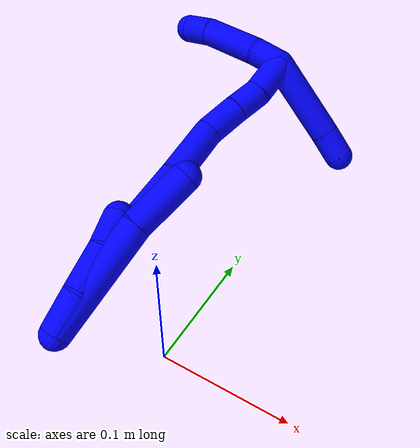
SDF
<sdf version="1.7">
 <world name="default">
  <plugin name="TubeGeneratorPlugin" filename="libtube_generator_plugin.so"/>
  <model name="photoneo_s_sensor">
   <static>1</static>
   <pose>0 0 2 1.57079 1.57079 3.14159</pose>
   <link name="link">
    <inertial><mass>0.1</mass></inertial>
    <sensor name="sensor" type="depth">
     <update_rate>30</update_rate>
     <camera>
      <horizontal_fov>1.22</horizontal_fov>
      <image><width>1920</width><height>1200</height><format>B8G8R8</format></image>
      <clip><near>0.1</near><far>4</far></clip>
      <depth_camera><output>points</output></depth_camera>
     </camera>
     <plugin name="camera_plugin" filename="libgazebo_ros_depth_camera.so">
      <baseline>0.2</baseline>
      <alwaysOn>1</alwaysOn>
      <updateRate>0.0</updateRate>
      <cameraName>camera_ir</cameraName>
      <imageTopicName>/camera/color/image_raw</imageTopicName>
      <cameraInfoTopicName>/camera/color/camera_info</cameraInfoTopicName>
      <depthImageTopicName>/camera/depth/image_raw</depthImageTopicName>
      <depthImageCameraInfoTopicName>/camera/depth/camera_info</depthImageCameraInfoTopicName>
      <pointCloudTopicName>/camera/depth/points</pointCloudTopicName>
      <frameName>fr_optical</frameName>
      <pointCloudCutoff>0.1</pointCloudCutoff>
      <pointCloudCutoffMax>2.0</pointCloudCutoffMax>
      <distortionK1>0</distortionK1>
      <distortionK2>0</distortionK2>
      <distortionK3>0</distortionK3>
      <distortionT1>0</distortionT1>
      <distortionT2>0</distortionT2>
      <CxPrime>0</CxPrime>
      <Cx>0</Cx>
      <Cy>0</Cy>
      <focalLength>0</focalLength>
      <hackBaseline>0</hackBaseline>
     </plugin>
    </sensor>
   </link>
  </model>
  <gravity>0 0 -9.8</gravity>
  <magnetic_field>6e-06 2.3e-05 -4.2e-05</magnetic_field>
  <atmosphere type="adiabatic"/>
  <physics name="default_physics" default="0" type="ode">
   <max_step_size>0.003</max_step_size>
   <real_time_factor>1</real_time_factor>
   <real_time_update_rate>1000</real_time_update_rate>
   <max_contacts>10000</max_contacts>
   <ode>
    <solver>
     <type>quick</type>
     <iters>100</iters>
     <sor>1.3</sor>
     <use_dynamic_moi_rescaling>0</use_dynamic_moi_rescaling>
    </solver>
    <constraints>
     <contact_max_correcting_vel>0</contact_max_correcting_vel>
     <contact_surface_layer>0.001</contact_surface_layer>
     <cfm>0</cfm>
     <erp>0.2</erp>
    </constraints>
   </ode>
  </physics>
  <scene><ambient>0.4 0.4 0.4 1</ambient><background>0.7 0.7 0.7 1</background><shadows>0</shadows></scene>
  <audio><device>default</device></audio>
  <spherical_coordinates>
   <surface_model>EARTH_WGS84</surface_model>
   <latitude_deg>0</latitude_deg>
   <longitude_deg>0</longitude_deg>
   <elevation>0</elevation>
   <heading_deg>0</heading_deg>
  </spherical_coordinates>
  <model name="bin">
   <static>1</static>
   <link name="bottom">
    <collision name="collision-bottom">
     <pose>0 0 -0.01 0 -0 0</pose>
     <geometry><box><size>0.8 0.6 0.02</size></box></geometry>
     <surface>
      <friction><ode><mu>100</mu><mu2>100</mu2></ode></friction>
      <contact><collide_bitmask>65535</collide_bitmask></contact>
     </surface>
    </collision>
   </link>
   <link name="west_wall">
    <collision name="collision-west_wall">
     <pose>-0.41 0 0.1 0 -0 0</pose>
     <geometry><box><size>0.02 0.6 0.2</size></box></geometry>
     <surface>
      <friction><ode><mu>100</mu><mu2>100</mu2></ode></friction>
      <contact><collide_bitmask>65535</collide_bitmask></contact>
     </surface>
    </collision>
   </link>
   <link name="east_wall">
    <collision name="collision-east_wall">
     <pose>0.41 0 0.1 0 -0 0</pose>
     <geometry><box><size>0.02 0.6 0.2</size></box></geometry>
     <surface>
      <friction><ode><mu>100</mu><mu2>100</mu2></ode></friction>
      <contact><collide_bitmask>65535</collide_bitmask></contact>
     </surface>
    </collision>
   </link>
   <link name="south_wall">
    <collision name="collision-south_wall">
     <pose>0 -0.31 0.1 0 -0 0</pose>
     <geometry><box><size>0.8 0.02 0.2</size></box></geometry>
     <surface>
      <friction><ode><mu>100</mu><mu2>100</mu2></ode></friction>
      <contact><collide_bitmask>65535</collide_bitmask></contact>
     </surface>
    </collision>
   </link>
   <link name="north_wall">
    <collision name="collision-north_wall">
     <pose>0 0.31 0.1 0 -0 0</pose>
     <geometry><box><size>0.8 0.02 0.2</size></box></geometry>
     <surface>
      <friction><ode><mu>100</mu><mu2>100</mu2></ode></friction>
      <contact><collide_bitmask>65535</collide_bitmask></contact>
     </surface>
    </collision>
   </link>
  </model>
  <model name="1">
   <static>0</static>
   <link name="1">
    <collision name="collision-cylinder-e_1_2_8">
     <pose>0.005578 0.005614 0.04824 -0.115863 0.114344 -0.006639</pose>
     <geometry><cylinder><radius>0.0125</radius><length>0.09777</length></cylinder></geometry>
     <surface>
      <friction><ode><mu>1.16</mu><mu2>1.16</mu2><slip1>0</slip1><slip2>0</slip2></ode></friction>
      <contact><ode><kp>1e+06</kp><kd>1</kd><max_vel>0</max_vel><min_depth>0.001</min_depth></ode></contact>
     </surface>
    </collision>
    <visual name="visual-cylinder-e_1_2_8">
     <pose>0.005578 0.005614 0.04824 -0.115863 0.114344 -0.006639</pose>
     <geometry><cylinder><radius>0.0125</radius><length>0.09777</length></cylinder></geometry>
     <material><ambient>0 0 1 1</ambient></material>
    </visual>
    <collision name="collision-cylinder-e_2_8_6">
     <pose>0.018161 0.014368 0.121441 -0.125126 0.271607 -0.01712</pose>
     <geometry><cylinder><radius>0.0125</radius><length>0.05223</length></cylinder></geometry>
     <surface>
      <friction><ode><mu>1.16</mu><mu2>1.16</mu2><slip1>0</slip1><slip2>0</slip2></ode></friction>
      <contact><ode><kp>1e+06</kp><kd>1</kd><max_vel>0</max_vel><min_depth>0.001</min_depth></ode></contact>
     </surface>
    </collision>
    <visual name="visual-cylinder-e_2_8_6">
     <pose>0.018161 0.014368 0.121441 -0.125126 0.271607 -0.01712</pose>
     <geometry><cylinder><radius>0.0125</radius><length>0.05223</length></cylinder></geometry>
     <material><ambient>0 0 1 1</ambient></material>
    </visual>
    <collision name="collision-cylinder-e_1_2_9">
     <pose>-0.000169 0.001246 0.016637 -0.074729 -0.010107 0.000378</pose>
     <geometry><cylinder><radius>0.0125</radius><length>0.033369</length></cylinder></geometry>
     <surface>
      <friction><ode><mu>1.16</mu><mu2>1.16</mu2><slip1>0</slip1><slip2>0</slip2></ode></friction>
      <contact><ode><kp>1e+06</kp><kd>1</kd><max_vel>0</max_vel><min_depth>0.001</min_depth></ode></contact>
     </surface>
    </collision>
    <visual name="visual-cylinder-e_1_2_9">
     <pose>-0.000169 0.001246 0.016637 -0.074729 -0.010107 0.000378</pose>
     <geometry><cylinder><radius>0.0125</radius><length>0.033369</length></cylinder></geometry>
     <material><ambient>0 0 1 1</ambient></material>
    </visual>
    <collision name="collision-cylinder-e_2_9_10">
     <pose>-0.00096 0.007733 0.051241 -0.283881 -0.03327 0.004755</pose>
     <geometry><cylinder><radius>0.0125</radius><length>0.037453</length></cylinder></geometry>
     <surface>
      <friction><ode><mu>1.16</mu><mu2>1.16</mu2><slip1>0</slip1><slip2>0</slip2></ode></friction>
      <contact><ode><kp>1e+06</kp><kd>1</kd><max_vel>0</max_vel><min_depth>0.001</min_depth></ode></contact>
     </surface>
    </collision>
    <visual name="visual-cylinder-e_2_9_10">
     <pose>-0.00096 0.007733 0.051241 -0.283881 -0.03327 0.004755</pose>
     <geometry><cylinder><radius>0.0125</radius><length>0.037453</length></cylinder></geometry>
     <material><ambient>0 0 1 1</ambient></material>
    </visual>
    <collision name="collision-cylinder-e_3_10_5">
     <pose>-0.003921 0.020086 0.08173 -0.516452 -0.160968 0.042601</pose>
     <geometry><cylinder><radius>0.0125</radius><length>0.029179</length></cylinder></geometry>
     <surface>
      <friction><ode><mu>1.16</mu><mu2>1.16</mu2><slip1>0</slip1><slip2>0</slip2></ode></friction>
      <contact><ode><kp>1e+06</kp><kd>1</kd><max_vel>0</max_vel><min_depth>0.001</min_depth></ode></contact>
     </surface>
    </collision>
    <visual name="visual-cylinder-e_3_10_5">
     <pose>-0.003921 0.020086 0.08173 -0.516452 -0.160968 0.042601</pose>
     <geometry><cylinder><radius>0.0125</radius><length>0.029179</length></cylinder></geometry>
     <material><ambient>0 0 1 1</ambient></material>
    </visual>
    <collision name="collision-cylinder-e_1_2_11">
     <pose>-0.000349 0.005582 0.010589 -0.485119 -0.029137 0.00721</pose>
     <geometry><cylinder><radius>0.0125</radius><length>0.023951</length></cylinder></geometry>
     <surface>
      <friction><ode><mu>1.16</mu><mu2>1.16</mu2><slip1>0</slip1><slip2>0</slip2></ode></friction>
      <contact><ode><kp>1e+06</kp><kd>1</kd><max_vel>0</max_vel><min_depth>0.001</min_depth></ode></contact>
     </surface>
    </collision>
    <visual name="visual-cylinder-e_1_2_11">
     <pose>-0.000349 0.005582 0.010589 -0.485119 -0.029137 0.00721</pose>
     <geometry><cylinder><radius>0.0125</radius><length>0.023951</length></cylinder></geometry>
     <material><ambient>0 0 1 1</ambient></material>
    </visual>
    <collision name="collision-cylinder-e_2_11_12">
     <pose>-0.001234 0.01893 0.036419 -0.471256 -0.031313 0.007518</pose>
     <geometry><cylinder><radius>0.0125</radius><length>0.034227</length></cylinder></geometry>
     <surface>
      <friction><ode><mu>1.16</mu><mu2>1.16</mu2><slip1>0</slip1><slip2>0</slip2></ode></friction>
      <contact><ode><kp>1e+06</kp><kd>1</kd><max_vel>0</max_vel><min_depth>0.001</min_depth></ode></contact>
     </surface>
    </collision>
    <visual name="visual-cylinder-e_2_11_12">
     <pose>-0.001234 0.01893 0.036419 -0.471256 -0.031313 0.007518</pose>
     <geometry><cylinder><radius>0.0125</radius><length>0.034227</length></cylinder></geometry>
     <material><ambient>0 0 1 1</ambient></material>
    </visual>
    <collision name="collision-cylinder-e_3_12_13">
     <pose>0.005796 0.038222 0.098063 -0.243463 0.156932 -0.019237</pose>
     <geometry><cylinder><radius>0.0125</radius><length>0.096817</length></cylinder></geometry>
     <surface>
      <friction><ode><mu>1.16</mu><mu2>1.16</mu2><slip1>0</slip1><slip2>0</slip2></ode></friction>
      <contact><ode><kp>1e+06</kp><kd>1</kd><max_vel>0</max_vel><min_depth>0.001</min_depth></ode></contact>
     </surface>
    </collision>
    <visual name="visual-cylinder-e_3_12_13">
     <pose>0.005796 0.038222 0.098063 -0.243463 0.156932 -0.019237</pose>
     <geometry><cylinder><radius>0.0125</radius><length>0.096817</length></cylinder></geometry>
     <material><ambient>0 0 1 1</ambient></material>
    </visual>
    <collision name="collision-cylinder-e_4_13_14">
     <pose>0.015571 0.061323 0.167595 -0.464026 0.085208 -0.020143</pose>
     <geometry><cylinder><radius>0.0125</radius><length>0.051916</length></cylinder></geometry>
     <surface>
      <friction><ode><mu>1.16</mu><mu2>1.16</mu2><slip1>0</slip1><slip2>0</slip2></ode></friction>
      <contact><ode><kp>1e+06</kp><kd>1</kd><max_vel>0</max_vel><min_depth>0.001</min_depth></ode></contact>
     </surface>
    </collision>
    <visual name="visual-cylinder-e_4_13_14">
     <pose>0.015571 0.061323 0.167595 -0.464026 0.085208 -0.020143</pose>
     <geometry><cylinder><radius>0.0125</radius><length>0.051916</length></cylinder></geometry>
     <material><ambient>0 0 1 1</ambient></material>
    </visual>
    <collision name="collision-cylinder-e_5_14_15">
     <pose>0.022878 0.076817 0.20534 -0.261916 0.324957 -0.043175</pose>
     <geometry><cylinder><radius>0.0125</radius><length>0.031935</length></cylinder></geometry>
     <surface>
      <friction><ode><mu>1.16</mu><mu2>1.16</mu2><slip1>0</slip1><slip2>0</slip2></ode></friction>
      <contact><ode><kp>1e+06</kp><kd>1</kd><max_vel>0</max_vel><min_depth>0.001</min_depth></ode></contact>
     </surface>
    </collision>
    <visual name="visual-cylinder-e_5_14_15">
     <pose>0.022878 0.076817 0.20534 -0.261916 0.324957 -0.043175</pose>
     <geometry><cylinder><radius>0.0125</radius><length>0.031935</length></cylinder></geometry>
     <material><ambient>0 0 1 1</ambient></material>
    </visual>
    <collision name="collision-cylinder-e_6_15_16">
     <pose>0.032464 0.084315 0.231502 -0.300693 0.355446 -0.054407</pose>
     <geometry><cylinder><radius>0.0125</radius><length>0.025789</length></cylinder></geometry>
     <surface>
      <friction><ode><mu>1.16</mu><mu2>1.16</mu2><slip1>0</slip1><slip2>0</slip2></ode></friction>
      <contact><ode><kp>1e+06</kp><kd>1</kd><max_vel>0</max_vel><min_depth>0.001</min_depth></ode></contact>
     </surface>
    </collision>
    <visual name="visual-cylinder-e_6_15_16">
     <pose>0.032464 0.084315 0.231502 -0.300693 0.355446 -0.054407</pose>
     <geometry><cylinder><radius>0.0125</radius><length>0.025789</length></cylinder></geometry>
     <material><ambient>0 0 1 1</ambient></material>
    </visual>
    <collision name="collision-cylinder-e_7_16_1">
     <pose>0.039095 0.092745 0.259917 -0.279941 0.12153 -0.017143</pose>
     <geometry><cylinder><radius>0.0125</radius><length>0.035365</length></cylinder></geometry>
     <surface>
      <friction><ode><mu>1.16</mu><mu2>1.16</mu2><slip1>0</slip1><slip2>0</slip2></ode></friction>
      <contact><ode><kp>1e+06</kp><kd>1</kd><max_vel>0</max_vel><min_depth>0.001</min_depth></ode></contact>
     </surface>
    </collision>
    <visual name="visual-cylinder-e_7_16_1">
     <pose>0.039095 0.092745 0.259917 -0.279941 0.12153 -0.017143</pose>
     <geometry><cylinder><radius>0.0125</radius><length>0.035365</length></cylinder></geometry>
     <material><ambient>0 0 1 1</ambient></material>
    </visual>
    <collision name="collision-cylinder-e_1_1_17">
     <pose>0.073763 0.106553 0.261074 -2.62343 1.06329 -2.29481</pose>
     <geometry><cylinder><radius>0.0125</radius><length>0.07443</length></cylinder></geometry>
     <surface>
      <friction><ode><mu>1.16</mu><mu2>1.16</mu2><slip1>0</slip1><slip2>0</slip2></ode></friction>
      <contact><ode><kp>1e+06</kp><kd>1</kd><max_vel>0</max_vel><min_depth>0.001</min_depth></ode></contact>
     </surface>
    </collision>
    <visual name="visual-cylinder-e_1_1_17">
     <pose>0.073763 0.106553 0.261074 -2.62343 1.06329 -2.29481</pose>
     <geometry><cylinder><radius>0.0125</radius><length>0.07443</length></cylinder></geometry>
     <material><ambient>0 0 1 1</ambient></material>
    </visual>
    <collision name="collision-cylinder-e_2_17_4">
     <pose>0.117292 0.118495 0.239577 -2.66538 1.03669 -2.33695</pose>
     <geometry><cylinder><radius>0.0125</radius><length>0.02557</length></cylinder></geometry>
     <surface>
      <friction><ode><mu>1.16</mu><mu2>1.16</mu2><slip1>0</slip1><slip2>0</slip2></ode></friction>
      <contact><ode><kp>1e+06</kp><kd>1</kd><max_vel>0</max_vel><min_depth>0.001</min_depth></ode></contact>
     </surface>
    </collision>
    <visual name="visual-cylinder-e_2_17_4">
     <pose>0.117292 0.118495 0.239577 -2.66538 1.03669 -2.33695</pose>
     <geometry><cylinder><radius>0.0125</radius><length>0.02557</length></cylinder></geometry>
     <material><ambient>0 0 1 1</ambient></material>
    </visual>
    <collision name="collision-cylinder-e_1_1_18">
     <pose>0.02861 0.100037 0.277436 -1.31052 -1.3733 1.12435</pose>
     <geometry><cylinder><radius>0.0125</radius><length>0.025758</length></cylinder></geometry>
     <surface>
      <friction><ode><mu>1.16</mu><mu2>1.16</mu2><slip1>0</slip1><slip2>0</slip2></ode></friction>
      <contact><ode><kp>1e+06</kp><kd>1</kd><max_vel>0</max_vel><min_depth>0.001</min_depth></ode></contact>
     </surface>
    </collision>
    <visual name="visual-cylinder-e_1_1_18">
     <pose>0.02861 0.100037 0.277436 -1.31052 -1.3733 1.12435</pose>
     <geometry><cylinder><radius>0.0125</radius><length>0.025758</length></cylinder></geometry>
     <material><ambient>0 0 1 1</ambient></material>
    </visual>
    <collision name="collision-cylinder-e_2_18_19">
     <pose>-0.007869 0.112352 0.278586 -1.52028 -1.17784 1.13162</pose>
     <geometry><cylinder><radius>0.0125</radius><length>0.051636</length></cylinder></geometry>
     <surface>
      <friction><ode><mu>1.16</mu><mu2>1.16</mu2><slip1>0</slip1><slip2>0</slip2></ode></friction>
      <contact><ode><kp>1e+06</kp><kd>1</kd><max_vel>0</max_vel><min_depth>0.001</min_depth></ode></contact>
     </surface>
    </collision>
    <visual name="visual-cylinder-e_2_18_19">
     <pose>-0.007869 0.112352 0.278586 -1.52028 -1.17784 1.13162</pose>
     <geometry><cylinder><radius>0.0125</radius><length>0.051636</length></cylinder></geometry>
     <material><ambient>0 0 1 1</ambient></material>
    </visual>
    <collision name="collision-cylinder-e_3_19_3">
     <pose>-0.041853 0.126829 0.277116 -1.97497 -1.11194 1.51062</pose>
     <geometry><cylinder><radius>0.0125</radius><length>0.022606</length></cylinder></geometry>
     <surface>
      <friction><ode><mu>1.16</mu><mu2>1.16</mu2><slip1>0</slip1><slip2>0</slip2></ode></friction>
      <contact><ode><kp>1e+06</kp><kd>1</kd><max_vel>0</max_vel><min_depth>0.001</min_depth></ode></contact>
     </surface>
    </collision>
    <visual name="visual-cylinder-e_3_19_3">
     <pose>-0.041853 0.126829 0.277116 -1.97497 -1.11194 1.51062</pose>
     <geometry><cylinder><radius>0.0125</radius><length>0.022606</length></cylinder></geometry>
     <material><ambient>0 0 1 1</ambient></material>
    </visual>
    <collision name="collision-sphere-3">
     <pose>-0.051987 0.131432 0.275147 0 -0 0</pose>
     <geometry><sphere><radius>0.0125</radius></sphere></geometry>
     <surface>
      <friction><ode><mu>1.16</mu><mu2>1.16</mu2><slip1>0</slip1><slip2>0</slip2></ode></friction>
      <contact><ode><kp>1e+06</kp><kd>1</kd><max_vel>0</max_vel><min_depth>0.001</min_depth></ode></contact>
     </surface>
    </collision>
    <visual name="visual-sphere-3">
     <pose>-0.051987 0.131432 0.275147 0 -0 0</pose>
     <geometry><sphere><radius>0.0125</radius></sphere></geometry>
     <material><ambient>0 0 1 1</ambient></material>
    </visual>
    <collision name="collision-sphere-19">
     <pose>-0.031719 0.122226 0.279085 0 -0 0</pose>
     <geometry><sphere><radius>0.0125</radius></sphere></geometry>
     <surface>
      <friction><ode><mu>1.16</mu><mu2>1.16</mu2><slip1>0</slip1><slip2>0</slip2></ode></friction>
      <contact><ode><kp>1e+06</kp><kd>1</kd><max_vel>0</max_vel><min_depth>0.001</min_depth></ode></contact>
     </surface>
    </collision>
    <visual name="visual-sphere-19">
     <pose>-0.031719 0.122226 0.279085 0 -0 0</pose>
     <geometry><sphere><radius>0.0125</radius></sphere></geometry>
     <material><ambient>0 0 1 1</ambient></material>
    </visual>
    <collision name="collision-sphere-5">
     <pose>-0.00626 0.027197 0.094253 0 -0 0</pose>
     <geometry><sphere><radius>0.0125</radius></sphere></geometry>
     <surface>
      <friction><ode><mu>1.16</mu><mu2>1.16</mu2><slip1>0</slip1><slip2>0</slip2></ode></friction>
      <contact><ode><kp>1e+06</kp><kd>1</kd><max_vel>0</max_vel><min_depth>0.001</min_depth></ode></contact>
     </surface>
    </collision>
    <visual name="visual-sphere-5">
     <pose>-0.00626 0.027197 0.094253 0 -0 0</pose>
     <geometry><sphere><radius>0.0125</radius></sphere></geometry>
     <material><ambient>0 0 1 1</ambient></material>
    </visual>
    <collision name="collision-sphere-10">
     <pose>-0.001583 0.012975 0.069208 0 -0 0</pose>
     <geometry><sphere><radius>0.0125</radius></sphere></geometry>
     <surface>
      <friction><ode><mu>1.16</mu><mu2>1.16</mu2><slip1>0</slip1><slip2>0</slip2></ode></friction>
      <contact><ode><kp>1e+06</kp><kd>1</kd><max_vel>0</max_vel><min_depth>0.001</min_depth></ode></contact>
     </surface>
    </collision>
    <visual name="visual-sphere-10">
     <pose>-0.001583 0.012975 0.069208 0 -0 0</pose>
     <geometry><sphere><radius>0.0125</radius></sphere></geometry>
     <material><ambient>0 0 1 1</ambient></material>
    </visual>
    <collision name="collision-sphere-6">
     <pose>0.025167 0.017508 0.146402 0 -0 0</pose>
     <geometry><sphere><radius>0.0125</radius></sphere></geometry>
     <surface>
      <friction><ode><mu>1.16</mu><mu2>1.16</mu2><slip1>0</slip1><slip2>0</slip2></ode></friction>
      <contact><ode><kp>1e+06</kp><kd>1</kd><max_vel>0</max_vel><min_depth>0.001</min_depth></ode></contact>
     </surface>
    </collision>
    <visual name="visual-sphere-6">
     <pose>0.025167 0.017508 0.146402 0 -0 0</pose>
     <geometry><sphere><radius>0.0125</radius></sphere></geometry>
     <material><ambient>0 0 1 1</ambient></material>
    </visual>
    <collision name="collision-sphere-9">
     <pose>-0.000337 0.002491 0.033274 0 -0 0</pose>
     <geometry><sphere><radius>0.0125</radius></sphere></geometry>
     <surface>
      <friction><ode><mu>1.16</mu><mu2>1.16</mu2><slip1>0</slip1><slip2>0</slip2></ode></friction>
      <contact><ode><kp>1e+06</kp><kd>1</kd><max_vel>0</max_vel><min_depth>0.001</min_depth></ode></contact>
     </surface>
    </collision>
    <visual name="visual-sphere-9">
     <pose>-0.000337 0.002491 0.033274 0 -0 0</pose>
     <geometry><sphere><radius>0.0125</radius></sphere></geometry>
     <material><ambient>0 0 1 1</ambient></material>
    </visual>
    <collision name="collision-sphere-2">
     <geometry><sphere><radius>0.0125</radius></sphere></geometry>
     <surface>
      <friction><ode><mu>1.16</mu><mu2>1.16</mu2><slip1>0</slip1><slip2>0</slip2></ode></friction>
      <contact><ode><kp>1e+06</kp><kd>1</kd><max_vel>0</max_vel><min_depth>0.001</min_depth></ode></contact>
     </surface>
    </collision>
    <visual name="visual-sphere-2">
     <geometry><sphere><radius>0.0125</radius></sphere></geometry>
     <material><ambient>0 0 1 1</ambient></material>
    </visual>
    <collision name="collision-sphere-8">
     <pose>0.011155 0.011229 0.09648 0 -0 0</pose>
     <geometry><sphere><radius>0.0125</radius></sphere></geometry>
     <surface>
      <friction><ode><mu>1.16</mu><mu2>1.16</mu2><slip1>0</slip1><slip2>0</slip2></ode></friction>
      <contact><ode><kp>1e+06</kp><kd>1</kd><max_vel>0</max_vel><min_depth>0.001</min_depth></ode></contact>
     </surface>
    </collision>
    <visual name="visual-sphere-8">
     <pose>0.011155 0.011229 0.09648 0 -0 0</pose>
     <geometry><sphere><radius>0.0125</radius></sphere></geometry>
     <material><ambient>0 0 1 1</ambient></material>
    </visual>
    <collision name="collision-sphere-11">
     <pose>-0.000698 0.011164 0.021178 0 -0 0</pose>
     <geometry><sphere><radius>0.0125</radius></sphere></geometry>
     <surface>
      <friction><ode><mu>1.16</mu><mu2>1.16</mu2><slip1>0</slip1><slip2>0</slip2></ode></friction>
      <contact><ode><kp>1e+06</kp><kd>1</kd><max_vel>0</max_vel><min_depth>0.001</min_depth></ode></contact>
     </surface>
    </collision>
    <visual name="visual-sphere-11">
     <pose>-0.000698 0.011164 0.021178 0 -0 0</pose>
     <geometry><sphere><radius>0.0125</radius></sphere></geometry>
     <material><ambient>0 0 1 1</ambient></material>
    </visual>
    <collision name="collision-sphere-12">
     <pose>-0.001769 0.026695 0.051659 0 -0 0</pose>
     <geometry><sphere><radius>0.0125</radius></sphere></geometry>
     <surface>
      <friction><ode><mu>1.16</mu><mu2>1.16</mu2><slip1>0</slip1><slip2>0</slip2></ode></friction>
      <contact><ode><kp>1e+06</kp><kd>1</kd><max_vel>0</max_vel><min_depth>0.001</min_depth></ode></contact>
     </surface>
    </collision>
    <visual name="visual-sphere-12">
     <pose>-0.001769 0.026695 0.051659 0 -0 0</pose>
     <geometry><sphere><radius>0.0125</radius></sphere></geometry>
     <material><ambient>0 0 1 1</ambient></material>
    </visual>
    <collision name="collision-sphere-13">
     <pose>0.013362 0.049748 0.144466 0 -0 0</pose>
     <geometry><sphere><radius>0.0125</radius></sphere></geometry>
     <surface>
      <friction><ode><mu>1.16</mu><mu2>1.16</mu2><slip1>0</slip1><slip2>0</slip2></ode></friction>
      <contact><ode><kp>1e+06</kp><kd>1</kd><max_vel>0</max_vel><min_depth>0.001</min_depth></ode></contact>
     </surface>
    </collision>
    <visual name="visual-sphere-13">
     <pose>0.013362 0.049748 0.144466 0 -0 0</pose>
     <geometry><sphere><radius>0.0125</radius></sphere></geometry>
     <material><ambient>0 0 1 1</ambient></material>
    </visual>
    <collision name="collision-sphere-14">
     <pose>0.01778 0.072899 0.190724 0 -0 0</pose>
     <geometry><sphere><radius>0.0125</radius></sphere></geometry>
     <surface>
      <friction><ode><mu>1.16</mu><mu2>1.16</mu2><slip1>0</slip1><slip2>0</slip2></ode></friction>
      <contact><ode><kp>1e+06</kp><kd>1</kd><max_vel>0</max_vel><min_depth>0.001</min_depth></ode></contact>
     </surface>
    </collision>
    <visual name="visual-sphere-14">
     <pose>0.01778 0.072899 0.190724 0 -0 0</pose>
     <geometry><sphere><radius>0.0125</radius></sphere></geometry>
     <material><ambient>0 0 1 1</ambient></material>
    </visual>
    <collision name="collision-sphere-15">
     <pose>0.027976 0.080735 0.219956 0 -0 0</pose>
     <geometry><sphere><radius>0.0125</radius></sphere></geometry>
     <surface>
      <friction><ode><mu>1.16</mu><mu2>1.16</mu2><slip1>0</slip1><slip2>0</slip2></ode></friction>
      <contact><ode><kp>1e+06</kp><kd>1</kd><max_vel>0</max_vel><min_depth>0.001</min_depth></ode></contact>
     </surface>
    </collision>
    <visual name="visual-sphere-15">
     <pose>0.027976 0.080735 0.219956 0 -0 0</pose>
     <geometry><sphere><radius>0.0125</radius></sphere></geometry>
     <material><ambient>0 0 1 1</ambient></material>
    </visual>
    <collision name="collision-sphere-16">
     <pose>0.036951 0.087896 0.243048 0 -0 0</pose>
     <geometry><sphere><radius>0.0125</radius></sphere></geometry>
     <surface>
      <friction><ode><mu>1.16</mu><mu2>1.16</mu2><slip1>0</slip1><slip2>0</slip2></ode></friction>
      <contact><ode><kp>1e+06</kp><kd>1</kd><max_vel>0</max_vel><min_depth>0.001</min_depth></ode></contact>
     </surface>
    </collision>
    <visual name="visual-sphere-16">
     <pose>0.036951 0.087896 0.243048 0 -0 0</pose>
     <geometry><sphere><radius>0.0125</radius></sphere></geometry>
     <material><ambient>0 0 1 1</ambient></material>
    </visual>
    <collision name="collision-sphere-1">
     <pose>0.041238 0.097595 0.276786 0 -0 0</pose>
     <geometry><sphere><radius>0.0125</radius></sphere></geometry>
     <surface>
      <friction><ode><mu>1.16</mu><mu2>1.16</mu2><slip1>0</slip1><slip2>0</slip2></ode></friction>
      <contact><ode><kp>1e+06</kp><kd>1</kd><max_vel>0</max_vel><min_depth>0.001</min_depth></ode></contact>
     </surface>
    </collision>
    <visual name="visual-sphere-1">
     <pose>0.041238 0.097595 0.276786 0 -0 0</pose>
     <geometry><sphere><radius>0.0125</radius></sphere></geometry>
     <material><ambient>0 0 1 1</ambient></material>
    </visual>
    <collision name="collision-sphere-18">
     <pose>0.015982 0.102479 0.278087 0 -0 0</pose>
     <geometry><sphere><radius>0.0125</radius></sphere></geometry>
     <surface>
      <friction><ode><mu>1.16</mu><mu2>1.16</mu2><slip1>0</slip1><slip2>0</slip2></ode></friction>
      <contact><ode><kp>1e+06</kp><kd>1</kd><max_vel>0</max_vel><min_depth>0.001</min_depth></ode></contact>
     </surface>
    </collision>
    <visual name="visual-sphere-18">
     <pose>0.015982 0.102479 0.278087 0 -0 0</pose>
     <geometry><sphere><radius>0.0125</radius></sphere></geometry>
     <material><ambient>0 0 1 1</ambient></material>
    </visual>
    <collision name="collision-sphere-17">
     <pose>0.106288 0.115511 0.245361 0 -0 0</pose>
     <geometry><sphere><radius>0.0125</radius></sphere></geometry>
     <surface>
      <friction><ode><mu>1.16</mu><mu2>1.16</mu2><slip1>0</slip1><slip2>0</slip2></ode></friction>
      <contact><ode><kp>1e+06</kp><kd>1</kd><max_vel>0</max_vel><min_depth>0.001</min_depth></ode></contact>
     </surface>
    </collision>
    <visual name="visual-sphere-17">
     <pose>0.106288 0.115511 0.245361 0 -0 0</pose>
     <geometry><sphere><radius>0.0125</radius></sphere></geometry>
     <material><ambient>0 0 1 1</ambient></material>
    </visual>
    <collision name="collision-sphere-4">
     <pose>0.128296 0.121478 0.233793 0 -0 0</pose>
     <geometry><sphere><radius>0.0125</radius></sphere></geometry>
     <surface>
      <friction><ode><mu>1.16</mu><mu2>1.16</mu2><slip1>0</slip1><slip2>0</slip2></ode></friction>
      <contact><ode><kp>1e+06</kp><kd>1</kd><max_vel>0</max_vel><min_depth>0.001</min_depth></ode></contact>
     </surface>
    </collision>
    <visual name="visual-sphere-4">
     <pose>0.128296 0.121478 0.233793 0 -0 0</pose>
     <geometry><sphere><radius>0.0125</radius></sphere></geometry>
     <material><ambient>0 0 1 1</ambient></material>
    </visual>
    <inertial>
     <pose>0.017975 0.053328 0.147582 0 -0 0</pose>
     <mass>0.75</mass>
     <inertia><ixx>0.0002</ixx><ixy>0</ixy><ixz>0</ixz><iyy>0.00027</iyy><iyz>0</iyz><izz>-7.1e-05</izz></inertia>
    </inertial>
   </link>
   <pose>-0.073555 -0.031262 0.012019 -0.84412 0.328107 0.146788</pose>
  </model>
 </world>
</sdf>
